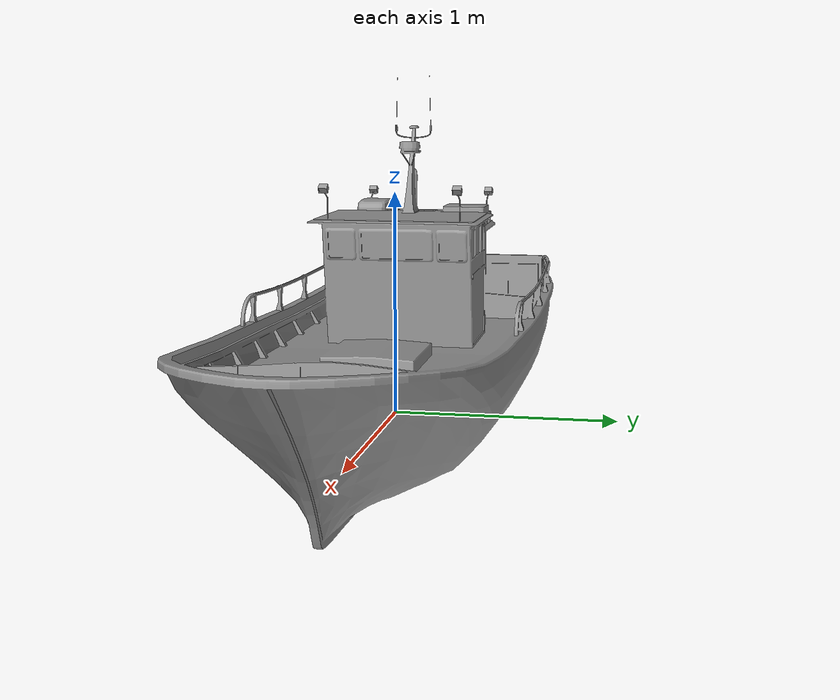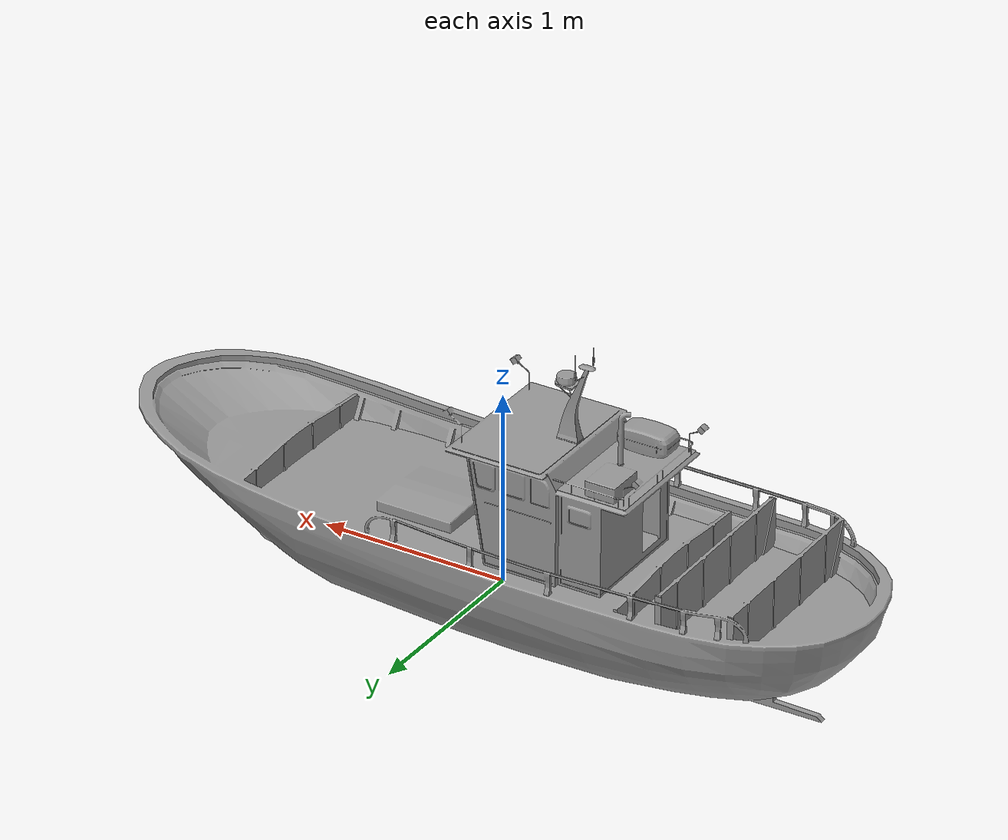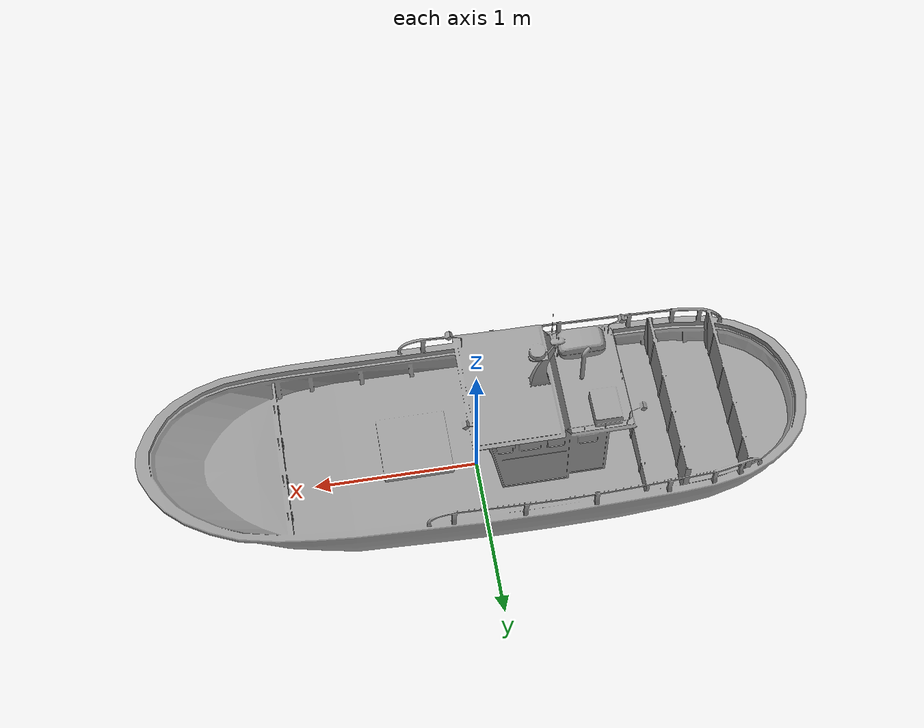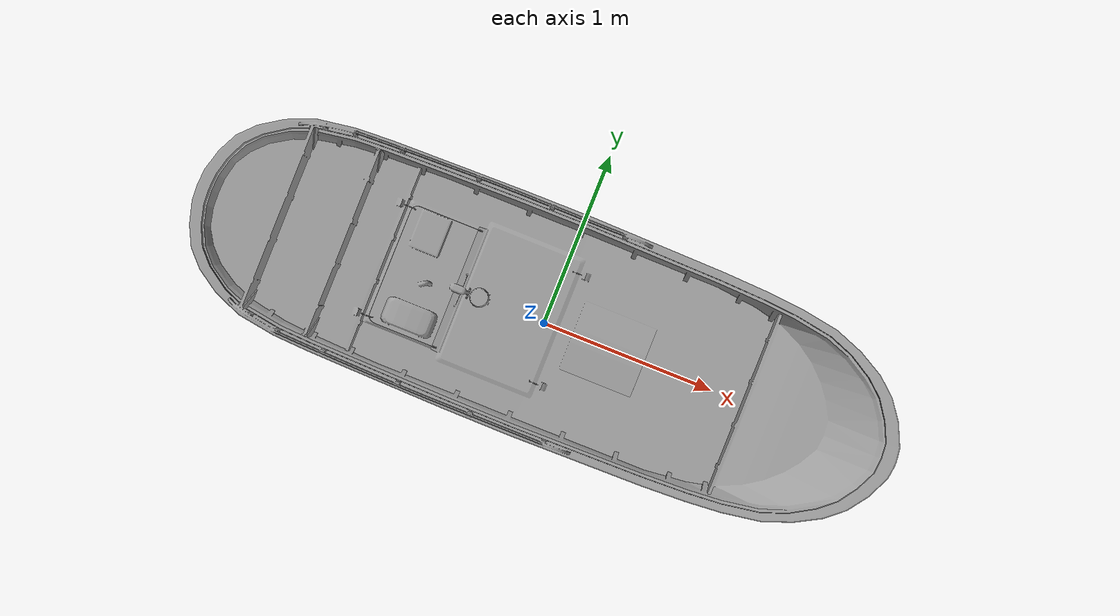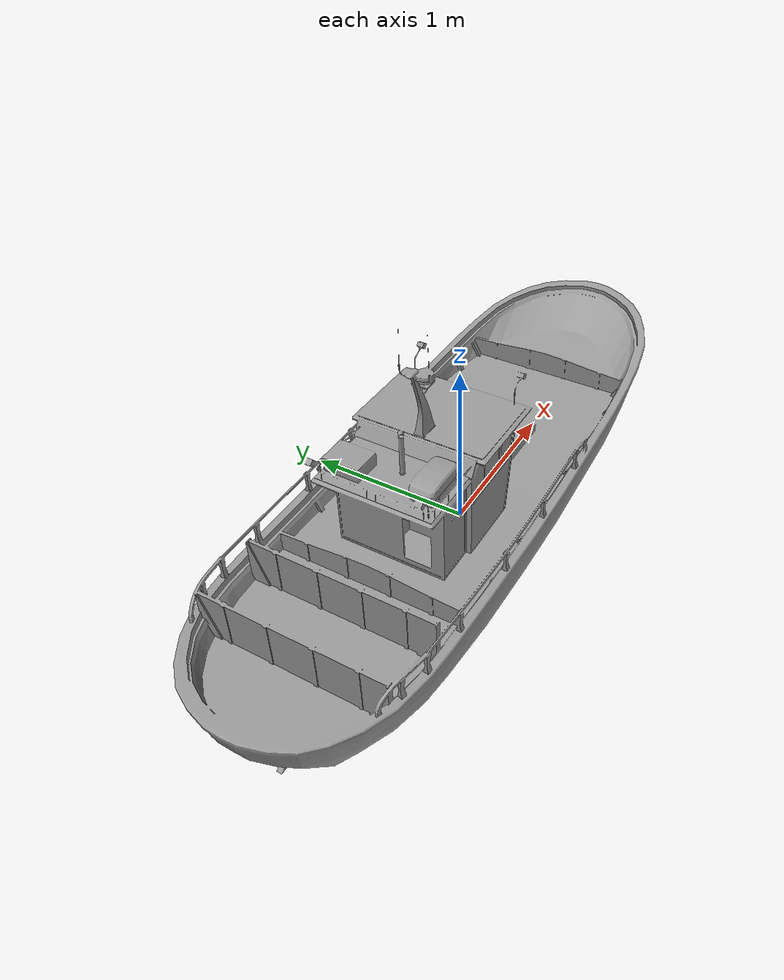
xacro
<?xml version="1.0"?>
<robot name="vessel_f" xmlns:xacro="http://www.ros.org/wiki/xacro">
  <xacro:arg name="namespace" default="vessel_f"/>
  <xacro:property name="ns" value="$(arg namespace)"/>
  <xacro:property name="mesh_path" value="file://$(find model)/models/vessel_f/meshes/Boat06.dae"/>
  <xacro:property name="tex_path" value="file://$(find model)/models/vessel_f/materials/textures"/>

  <link name="${ns}/base_link">
    <visual>
      <origin rpy="1.5708 0 1.5708" xyz="0 0 0"/>
      <geometry>
        <mesh filename="${mesh_path}" scale="0.25 0.25 0.25"/>
      </geometry>
      <material name="boat6_albedo">
        <texture filename="${tex_path}/Boat06_Albedo.jpg"/>
      </material>
    </visual>
    <collision>
      <origin rpy="1.5708 0 1.5708" xyz="0 0 0"/>
      <geometry>
        <mesh filename="${mesh_path}" scale="0.25 0.25 0.25"/>
      </geometry>
    </collision>
    <inertial>
      <mass value="1500.0"/>
      <origin xyz="0 0 -0.1" rpy="0 0 0"/>
      <inertia ixx="3625" ixy="0" iyy="25000" ixz="0" iyz="0" izz="27625"/>
    </inertial>
  </link>

  <gazebo reference="${ns}/base_link">
    <material>Gazebo/Grey</material>
  </gazebo>
</robot>
